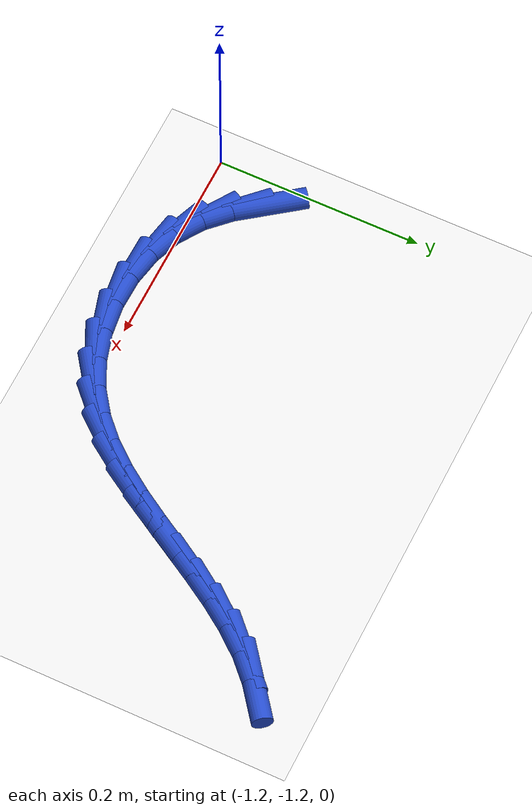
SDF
<sdf version="1.6">
 <world name="default">
  <model name="ground_plane">
   <static>1</static>
   <link name="link">
    <collision name="collision">
     <geometry><plane><normal>0 0 1</normal><size>100 100</size></plane></geometry>
     <surface><friction><ode><mu>100</mu><mu2>50</mu2></ode></friction></surface>
    </collision>
    <visual name="visual">
     <cast_shadows>0</cast_shadows>
     <geometry><plane><normal>0 0 1</normal><size>100 100</size></plane></geometry>
     <material>
      <script><uri>file://media/materials/scripts/gazebo.material</uri><name>Gazebo/WhiteGlow</name></script>
     </material>
    </visual>
   </link>
  </model>
  <model name="line">
   <link name="link_187">
    <pose>-1.170724543334202 -1.141188000991884 0.01 0 1.57 -0.9243038032422138</pose>
    <collision name="collision">
     <geometry><cylinder><radius>0.01</radius><length>0.08</length></cylinder></geometry>
    </collision>
    <visual name="visual">
     <material>
      <script><name>Gazebo/Blue</name><uri>file://media/materials/scripts/gazebo.material</uri></script>
     </material>
     <geometry><cylinder><radius>0.01</radius><length>0.08</length></cylinder></geometry>
    </visual>
   </link>
   <link name="link_188">
    <pose>-1.1523647707058184 -1.165515743192209 0.01 0 1.57 -0.7823861692653028</pose>
    <collision name="collision">
     <geometry><cylinder><radius>0.01</radius><length>0.08</length></cylinder></geometry>
    </collision>
    <visual name="visual">
     <material>
      <script><name>Gazebo/Blue</name><uri>file://media/materials/scripts/gazebo.material</uri></script>
     </material>
     <geometry><cylinder><radius>0.01</radius><length>0.08</length></cylinder></geometry>
    </visual>
   </link>
   <link name="link_189">
    <pose>-1.1313043362042752 -1.1864496904797184 0.01 0 1.57 -0.5793829856998604</pose>
    <collision name="collision">
     <geometry><cylinder><radius>0.01</radius><length>0.08</length></cylinder></geometry>
    </collision>
    <visual name="visual">
     <material>
      <script><name>Gazebo/Blue</name><uri>file://media/materials/scripts/gazebo.material</uri></script>
     </material>
     <geometry><cylinder><radius>0.01</radius><length>0.08</length></cylinder></geometry>
    </visual>
   </link>
   <link name="link_190">
    <pose>-1.1066510054668812 -1.2025800428078348 0.01 0 1.57 -0.36545149376217456</pose>
    <collision name="collision">
     <geometry><cylinder><radius>0.01</radius><length>0.08</length></cylinder></geometry>
    </collision>
    <visual name="visual">
     <material>
      <script><name>Gazebo/Blue</name><uri>file://media/materials/scripts/gazebo.material</uri></script>
     </material>
     <geometry><cylinder><radius>0.01</radius><length>0.08</length></cylinder></geometry>
    </visual>
   </link>
   <link name="link_191">
    <pose>-1.078582569194926 -1.2133201371214002 0.01 0 1.57 -0.18115945897993724</pose>
    <collision name="collision">
     <geometry><cylinder><radius>0.01</radius><length>0.08</length></cylinder></geometry>
    </collision>
    <visual name="visual">
     <material>
      <script><name>Gazebo/Blue</name><uri>file://media/materials/scripts/gazebo.material</uri></script>
     </material>
     <geometry><cylinder><radius>0.01</radius><length>0.08</length></cylinder></geometry>
    </visual>
   </link>
   <link name="link_192">
    <pose>-1.0482963370876495 -1.2188675946114096 0.01 0 1.57 -0.018664919295263305</pose>
    <collision name="collision">
     <geometry><cylinder><radius>0.01</radius><length>0.08</length></cylinder></geometry>
    </collision>
    <visual name="visual">
     <material>
      <script><name>Gazebo/Blue</name><uri>file://media/materials/scripts/gazebo.material</uri></script>
     </material>
     <geometry><cylinder><radius>0.01</radius><length>0.08</length></cylinder></geometry>
    </visual>
   </link>
   <link name="link_193">
    <pose>-1.0170301848032228 -1.219451242598988 0.01 0 1.57 0.13308724321702053</pose>
    <collision name="collision">
     <geometry><cylinder><radius>0.01</radius><length>0.08</length></cylinder></geometry>
    </collision>
    <visual name="visual">
     <material>
      <script><name>Gazebo/Blue</name><uri>file://media/materials/scripts/gazebo.material</uri></script>
     </material>
     <geometry><cylinder><radius>0.01</radius><length>0.08</length></cylinder></geometry>
    </visual>
   </link>
   <link name="link_194">
    <pose>-0.9860219879998171 -1.2152999084052605 0.01 0 1.57 0.28534590778950325</pose>
    <collision name="collision">
     <geometry><cylinder><radius>0.01</radius><length>0.08</length></cylinder></geometry>
    </collision>
    <visual name="visual">
     <material>
      <script><name>Gazebo/Blue</name><uri>file://media/materials/scripts/gazebo.material</uri></script>
     </material>
     <geometry><cylinder><radius>0.01</radius><length>0.08</length></cylinder></geometry>
    </visual>
   </link>
   <link name="link_195">
    <pose>-0.9565096223356031 -1.2066424193513512 0.01 0 1.57 0.44950993690052166</pose>
    <collision name="collision">
     <geometry><cylinder><radius>0.01</radius><length>0.08</length></cylinder></geometry>
    </collision>
    <visual name="visual">
     <material>
      <script><name>Gazebo/Blue</name><uri>file://media/materials/scripts/gazebo.material</uri></script>
     </material>
     <geometry><cylinder><radius>0.01</radius><length>0.08</length></cylinder></geometry>
    </visual>
   </link>
   <link name="link_196">
    <pose>-0.9297095406970606 -1.1937126987092466 0.01 0 1.57 0.6177844000311344</pose>
    <collision name="collision">
     <geometry><cylinder><radius>0.01</radius><length>0.08</length></cylinder></geometry>
    </collision>
    <visual name="visual">
     <material>
      <script><name>Gazebo/Blue</name><uri>file://media/materials/scripts/gazebo.material</uri></script>
     </material>
     <geometry><cylinder><radius>0.01</radius><length>0.08</length></cylinder></geometry>
    </visual>
   </link>
   <link name="link_197">
    <pose>-0.9060829072597412 -1.1769243343719527 0.01 0 1.57 0.7629214548258023</pose>
    <collision name="collision">
     <geometry><cylinder><radius>0.01</radius><length>0.08</length></cylinder></geometry>
    </collision>
    <visual name="visual">
     <material>
      <script><name>Gazebo/Blue</name><uri>file://media/materials/scripts/gazebo.material</uri></script>
     </material>
     <geometry><cylinder><radius>0.01</radius><length>0.08</length></cylinder></geometry>
    </visual>
   </link>
   <link name="link_198">
    <pose>-0.8851523697634653 -1.1569141642258975 0.01 0 1.57 0.8772944287103888</pose>
    <collision name="collision">
     <geometry><cylinder><radius>0.01</radius><length>0.08</length></cylinder></geometry>
    </collision>
    <visual name="visual">
     <material>
      <script><name>Gazebo/Blue</name><uri>file://media/materials/scripts/gazebo.material</uri></script>
     </material>
     <geometry><cylinder><radius>0.01</radius><length>0.08</length></cylinder></geometry>
    </visual>
   </link>
   <link name="link_199">
    <pose>-0.8663819648429293 -1.1343329682988876 0.01 0 1.57 0.9602011286576683</pose>
    <collision name="collision">
     <geometry><cylinder><radius>0.01</radius><length>0.08</length></cylinder></geometry>
    </collision>
    <visual name="visual">
     <material>
      <script><name>Gazebo/Blue</name><uri>file://media/materials/scripts/gazebo.material</uri></script>
     </material>
     <geometry><cylinder><radius>0.01</radius><length>0.08</length></cylinder></geometry>
    </visual>
   </link>
   <link name="link_200">
    <pose>-0.8492357291328286 -1.1098315266187304 0.01 0 1.57 1.0135595102191806</pose>
    <collision name="collision">
     <geometry><cylinder><radius>0.01</radius><length>0.08</length></cylinder></geometry>
    </collision>
    <visual name="visual">
     <material>
      <script><name>Gazebo/Blue</name><uri>file://media/materials/scripts/gazebo.material</uri></script>
     </material>
     <geometry><cylinder><radius>0.01</radius><length>0.08</length></cylinder></geometry>
    </visual>
   </link>
   <link name="link_201">
    <pose>-0.8331776992678591 -1.0840606192132327 0.01 0 1.57 1.0395651448185221</pose>
    <collision name="collision">
     <geometry><cylinder><radius>0.01</radius><length>0.08</length></cylinder></geometry>
    </collision>
    <visual name="visual">
     <material>
      <script><name>Gazebo/Blue</name><uri>file://media/materials/scripts/gazebo.material</uri></script>
     </material>
     <geometry><cylinder><radius>0.01</radius><length>0.08</length></cylinder></geometry>
    </visual>
   </link>
   <link name="link_202">
    <pose>-0.8176719118827166 -1.0576710261102016 0.01 0 1.57 1.0394924231192657</pose>
    <collision name="collision">
     <geometry><cylinder><radius>0.01</radius><length>0.08</length></cylinder></geometry>
    </collision>
    <visual name="visual">
     <material>
      <script><name>Gazebo/Blue</name><uri>file://media/materials/scripts/gazebo.material</uri></script>
     </material>
     <geometry><cylinder><radius>0.01</radius><length>0.08</length></cylinder></geometry>
    </visual>
   </link>
   <link name="link_203">
    <pose>-0.8021824036120973 -1.0313135273374439 0.01 0 1.57 1.0132465444100645</pose>
    <collision name="collision">
     <geometry><cylinder><radius>0.01</radius><length>0.08</length></cylinder></geometry>
    </collision>
    <visual name="visual">
     <material>
      <script><name>Gazebo/Blue</name><uri>file://media/materials/scripts/gazebo.material</uri></script>
     </material>
     <geometry><cylinder><radius>0.01</radius><length>0.08</length></cylinder></geometry>
    </visual>
   </link>
   <link name="link_204">
    <pose>-0.7861732110906962 -1.0056389029227666 0.01 0 1.57 0.9593493996485326</pose>
    <collision name="collision">
     <geometry><cylinder><radius>0.01</radius><length>0.08</length></cylinder></geometry>
    </collision>
    <visual name="visual">
     <material>
      <script><name>Gazebo/Blue</name><uri>file://media/materials/scripts/gazebo.material</uri></script>
     </material>
     <geometry><cylinder><radius>0.01</radius><length>0.08</length></cylinder></geometry>
    </visual>
   </link>
   <link name="link_205">
    <pose>-0.7691083709532099 -0.9812979328939773 0.01 0 1.57 0.8753719737128823</pose>
    <collision name="collision">
     <geometry><cylinder><radius>0.01</radius><length>0.08</length></cylinder></geometry>
    </collision>
    <visual name="visual">
     <material>
      <script><name>Gazebo/Blue</name><uri>file://media/materials/scripts/gazebo.material</uri></script>
     </material>
     <geometry><cylinder><radius>0.01</radius><length>0.08</length></cylinder></geometry>
    </visual>
   </link>
   <link name="link_206">
    <pose>-0.7504519198343338 -0.9589413972788821 0.01 0 1.57 0.7624327794404653</pose>
    <collision name="collision">
     <geometry><cylinder><radius>0.01</radius><length>0.08</length></cylinder></geometry>
    </collision>
    <visual name="visual">
     <material>
      <script><name>Gazebo/Blue</name><uri>file://media/materials/scripts/gazebo.material</uri></script>
     </material>
     <geometry><cylinder><radius>0.01</radius><length>0.08</length></cylinder></geometry>
    </visual>
   </link>
   <link name="link_207">
    <pose>-0.7297260971423547 -0.9391463163301956 0.01 0 1.57 0.6505265453573532</pose>
    <collision name="collision">
     <geometry><cylinder><radius>0.01</radius><length>0.08</length></cylinder></geometry>
    </collision>
    <visual name="visual">
     <material>
      <script><name>Gazebo/Blue</name><uri>file://media/materials/scripts/gazebo.material</uri></script>
     </material>
     <geometry><cylinder><radius>0.01</radius><length>0.08</length></cylinder></geometry>
    </visual>
   </link>
  </model>
 </world>
</sdf>
